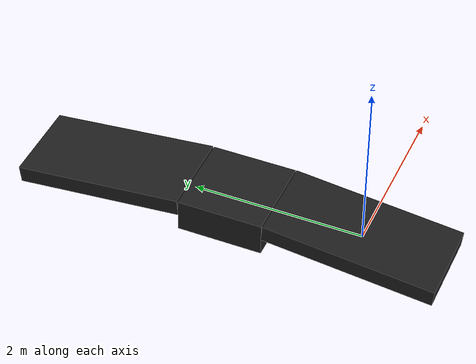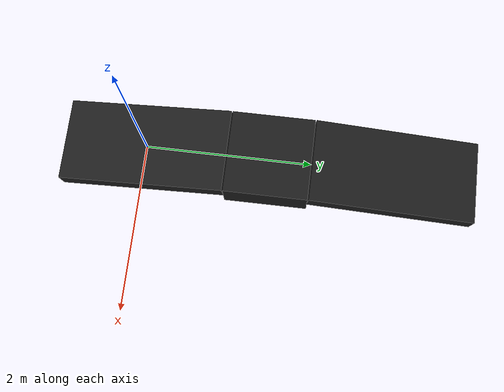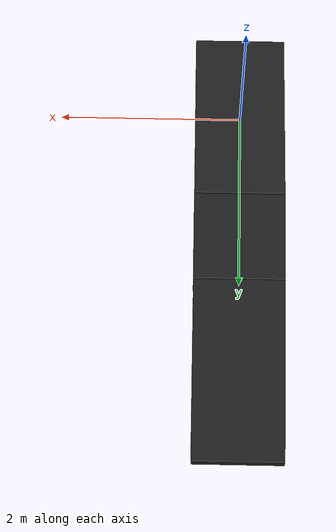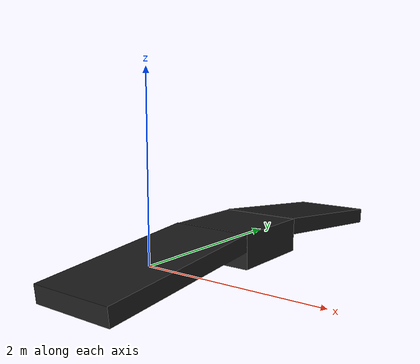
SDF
<?xml version="1.0"?>
<sdf version="1.4">
  <model name="ramp_20">
    <static>true</static>
    <pose>0 0 0 0 0 0</pose>
    <link name="link">
      <collision name="up_collision">
        <pose>0 0 0 0.1047 0 0</pose>
        <geometry>
          <box>
            <size>1 2 0.2</size>
          </box>
        </geometry>
      </collision>

        <visual name='up_visual'>
         <pose>0 0 0 0.1047 0 0 </pose>
          <geometry>
            <box>
              <size>1 2 0.2</size>
            </box>
          </geometry>
          <material>
            <script>
              <uri>file://media/materials/scripts/gazebo.material</uri>
              <name>Gazebo/FlatBlack</name>
            </script>
          </material>
        </visual>

      <collision name="mid_collision">
        <pose>0 1.5 0 0 0 0</pose>
        <geometry>
          <box>
            <size>1 1 0.2</size>
          </box>
        </geometry>
      </collision>

        <visual name='mid_visual'>
         <pose>0 1.5 0 0 0 0 </pose>
          <geometry>
            <box>
              <size>1 1 0.4</size>
            </box>
          </geometry>
          <material>
            <script>
              <uri>file://media/materials/scripts/gazebo.material</uri>
              <name>Gazebo/FlatBlack</name>
            </script>
          </material>
        </visual>

      <collision name="down_collision">
        <pose>0 3 -0 -0.1047 0 0</pose>
        <geometry>
          <box>
            <size>1 2 0.2</size>
          </box>
        </geometry>
      </collision>

        <visual name='down_visual'>
         <pose>0 3 0 -0.1047 0 0 </pose>
          <geometry>
            <box>
              <size>1 2 0.2</size>
            </box>
          </geometry>
        <material>
            <script>
              <uri>file://media/materials/scripts/gazebo.material</uri>
              <name>Gazebo/FlatBlack</name>
            </script>
          </material>
        </visual>

    </link>
  </model>
</sdf>
